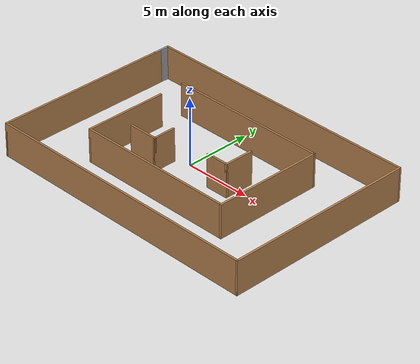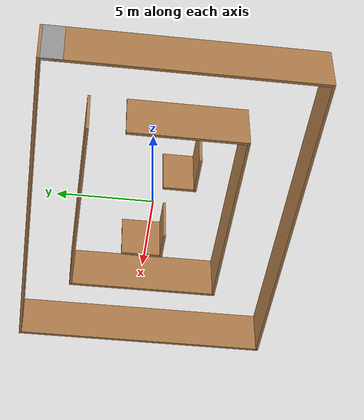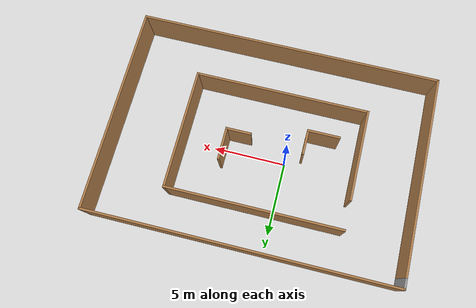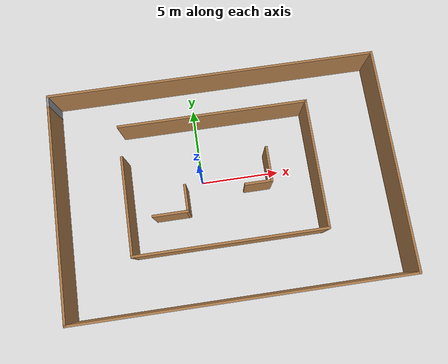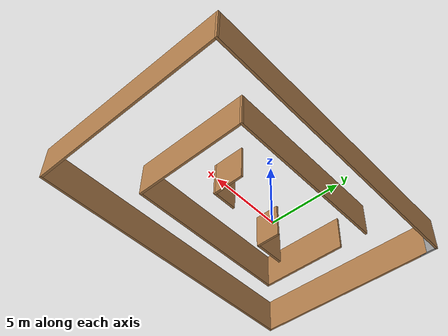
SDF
<?xml version='1.0'?>
<sdf version='1.7'>
  <model name='my_test_env'>
    <pose>1.50358 -0.606764 0 0 -0 0</pose>
    <link name='Wall_10'>
      <collision name='Wall_10_Collision'>
        <geometry>
          <box>
            <size>13.5 0.15 2.5</size>
          </box>
        </geometry>
        <pose>0 0 1.25 0 -0 0</pose>
      </collision>
      <visual name='Wall_10_Visual'>
        <pose>0 0 1.25 0 -0 0</pose>
        <geometry>
          <box>
            <size>13.5 0.15 2.5</size>
          </box>
        </geometry>
        <material>
          <script>
            <uri>file://media/materials/scripts/gazebo.material</uri>
            <name>Gazebo/Wood</name>
          </script>
          <ambient>1 1 1 1</ambient>
        </material>
        <meta>
          <layer>0</layer>
        </meta>
      </visual>
      <pose>-10.425 -0.375 0 0 -0 -1.5708</pose>
    </link>
    <link name='Wall_11'>
      <collision name='Wall_11_Collision'>
        <geometry>
          <box>
            <size>21 0.15 2.5</size>
          </box>
        </geometry>
        <pose>0 0 1.25 0 -0 0</pose>
      </collision>
      <visual name='Wall_11_Visual'>
        <pose>0 0 1.25 0 -0 0</pose>
        <geometry>
          <box>
            <size>21 0.15 2.5</size>
          </box>
        </geometry>
        <material>
          <script>
            <uri>file://media/materials/scripts/gazebo.material</uri>
            <name>Gazebo/Wood</name>
          </script>
          <ambient>1 1 1 1</ambient>
        </material>
        <meta>
          <layer>0</layer>
        </meta>
      </visual>
      <pose>0 -7.05 0 0 -0 0</pose>
    </link>
    <link name='Wall_12'>
      <collision name='Wall_12_Collision'>
        <geometry>
          <box>
            <size>14.25 0.15 2.5</size>
          </box>
        </geometry>
        <pose>0 0 1.25 0 -0 0</pose>
      </collision>
      <visual name='Wall_12_Visual'>
        <pose>0 0 1.25 0 -0 0</pose>
        <geometry>
          <box>
            <size>14.25 0.15 2.5</size>
          </box>
        </geometry>
        <material>
          <script>
            <uri>file://media/materials/scripts/gazebo.material</uri>
            <name>Gazebo/Wood</name>
          </script>
          <ambient>1 1 1 1</ambient>
        </material>
        <meta>
          <layer>0</layer>
        </meta>
      </visual>
      <pose>10.425 0 0 0 -0 1.5708</pose>
    </link>
    <link name='Wall_13'>
      <collision name='Wall_13_Collision'>
        <geometry>
          <box>
            <size>21 0.15 2.5</size>
          </box>
        </geometry>
        <pose>0 0 1.25 0 -0 0</pose>
      </collision>
      <visual name='Wall_13_Visual'>
        <pose>0 0 1.25 0 -0 0</pose>
        <geometry>
          <box>
            <size>21 0.15 2.5</size>
          </box>
        </geometry>
        <material>
          <script>
            <uri>file://media/materials/scripts/gazebo.material</uri>
            <name>Gazebo/Wood</name>
          </script>
          <ambient>1 1 1 1</ambient>
        </material>
        <meta>
          <layer>0</layer>
        </meta>
      </visual>
      <pose>0 7.05 0 0 -0 3.14159</pose>
    </link>
    <link name='Wall_14'>
      <collision name='Wall_14_Collision'>
        <geometry>
          <box>
            <size>1.25 0.15 2.5</size>
          </box>
        </geometry>
        <pose>0 0 1.25 0 -0 0</pose>
      </collision>
      <visual name='Wall_14_Visual'>
        <pose>0 0 1.25 0 -0 0</pose>
        <geometry>
          <box>
            <size>1.25 0.15 2.5</size>
          </box>
        </geometry>
        <material>
          <script>
            <uri>file://media/materials/scripts/gazebo.material</uri>
            <name>Gazebo/Grey</name>
          </script>
          <ambient>1 1 1 1</ambient>
        </material>
        <meta>
          <layer>0</layer>
        </meta>
      </visual>
      <pose>-10.425 6.5 0 0 -0 -1.5708</pose>
    </link>
    <link name='Wall_17'>
      <collision name='Wall_17_Collision'>
        <geometry>
          <box>
            <size>2.25 0.15 2.5</size>
          </box>
        </geometry>
        <pose>0 0 1.25 0 -0 0</pose>
      </collision>
      <visual name='Wall_17_Visual'>
        <pose>0 0 1.25 0 -0 0</pose>
        <geometry>
          <box>
            <size>2.25 0.15 2.5</size>
          </box>
        </geometry>
        <material>
          <script>
            <uri>file://media/materials/scripts/gazebo.material</uri>
            <name>Gazebo/Wood</name>
          </script>
          <ambient>1 1 1 1</ambient>
        </material>
        <meta>
          <layer>0</layer>
        </meta>
      </visual>
      <pose>2.72306 0.718975 0 0 -0 -1.5708</pose>
    </link>
    <link name='Wall_18'>
      <collision name='Wall_18_Collision'>
        <geometry>
          <box>
            <size>1.75 0.15 2.5</size>
          </box>
        </geometry>
        <pose>0 0 1.25 0 -0 0</pose>
      </collision>
      <visual name='Wall_18_Visual'>
        <pose>0 0 1.25 0 -0 0</pose>
        <geometry>
          <box>
            <size>1.75 0.15 2.5</size>
          </box>
        </geometry>
        <material>
          <script>
            <uri>file://media/materials/scripts/gazebo.material</uri>
            <name>Gazebo/Wood</name>
          </script>
          <ambient>1 1 1 1</ambient>
        </material>
        <meta>
          <layer>0</layer>
        </meta>
      </visual>
      <pose>1.92306 -0.331025 0 0 -0 3.14159</pose>
    </link>
    <link name='Wall_20'>
      <collision name='Wall_20_Collision'>
        <geometry>
          <box>
            <size>2.25 0.15 2.5</size>
          </box>
        </geometry>
        <pose>0 0 1.25 0 -0 0</pose>
      </collision>
      <visual name='Wall_20_Visual'>
        <pose>0 0 1.25 0 -0 0</pose>
        <geometry>
          <box>
            <size>2.25 0.15 2.5</size>
          </box>
        </geometry>
        <material>
          <script>
            <uri>file://media/materials/scripts/gazebo.material</uri>
            <name>Gazebo/Wood</name>
          </script>
          <ambient>1 1 1 1</ambient>
        </material>
        <meta>
          <layer>0</layer>
        </meta>
      </visual>
      <pose>-3.63031 -1.46747 0 0 -0 0</pose>
    </link>
    <link name='Wall_21'>
      <collision name='Wall_21_Collision'>
        <geometry>
          <box>
            <size>1.75 0.15 2.5</size>
          </box>
        </geometry>
        <pose>0 0 1.25 0 -0 0</pose>
      </collision>
      <visual name='Wall_21_Visual'>
        <pose>0 0 1.25 0 -0 0</pose>
        <geometry>
          <box>
            <size>1.75 0.15 2.5</size>
          </box>
        </geometry>
        <material>
          <script>
            <uri>file://media/materials/scripts/gazebo.material</uri>
            <name>Gazebo/Wood</name>
          </script>
          <ambient>1 1 1 1</ambient>
        </material>
        <meta>
          <layer>0</layer>
        </meta>
      </visual>
      <pose>-2.58031 -0.667471 0 0 -0 1.5708</pose>
    </link>
    <link name='Wall_4'>
      <collision name='Wall_4_Collision'>
        <geometry>
          <box>
            <size>6.25 0.15 2.5</size>
          </box>
        </geometry>
        <pose>0 0 1.25 0 -0 0</pose>
      </collision>
      <visual name='Wall_4_Visual'>
        <pose>0 0 1.25 0 -0 0</pose>
        <geometry>
          <box>
            <size>6.25 0.15 2.5</size>
          </box>
        </geometry>
        <material>
          <script>
            <uri>file://media/materials/scripts/gazebo.material</uri>
            <name>Gazebo/Wood</name>
          </script>
          <ambient>1 1 1 1</ambient>
        </material>
        <meta>
          <layer>0</layer>
        </meta>
      </visual>
      <pose>-6.19752 -0.631293 0 0 -0 -1.5708</pose>
    </link>
    <link name='Wall_5'>
      <collision name='Wall_5_Collision'>
        <geometry>
          <box>
            <size>12 0.15 2.5</size>
          </box>
        </geometry>
        <pose>0 0 1.25 0 -0 0</pose>
      </collision>
      <visual name='Wall_5_Visual'>
        <pose>0 0 1.25 0 -0 0</pose>
        <geometry>
          <box>
            <size>12 0.15 2.5</size>
          </box>
        </geometry>
        <material>
          <script>
            <uri>file://media/materials/scripts/gazebo.material</uri>
            <name>Gazebo/Wood</name>
          </script>
          <ambient>1 1 1 1</ambient>
        </material>
        <meta>
          <layer>0</layer>
        </meta>
      </visual>
      <pose>-0.272518 -3.68129 0 0 -0 0</pose>
    </link>
    <link name='Wall_6'>
      <collision name='Wall_6_Collision'>
        <geometry>
          <box>
            <size>8.25 0.15 2.5</size>
          </box>
        </geometry>
        <pose>0 0 1.25 0 -0 0</pose>
      </collision>
      <visual name='Wall_6_Visual'>
        <pose>0 0 1.25 0 -0 0</pose>
        <geometry>
          <box>
            <size>8.25 0.15 2.5</size>
          </box>
        </geometry>
        <material>
          <script>
            <uri>file://media/materials/scripts/gazebo.material</uri>
            <name>Gazebo/Wood</name>
          </script>
          <ambient>1 1 1 1</ambient>
        </material>
        <meta>
          <layer>0</layer>
        </meta>
      </visual>
      <pose>5.65248 0.368707 0 0 -0 1.5708</pose>
    </link>
    <link name='Wall_7'>
      <collision name='Wall_7_Collision'>
        <geometry>
          <box>
            <size>12 0.15 2.5</size>
          </box>
        </geometry>
        <pose>0 0 1.25 0 -0 0</pose>
      </collision>
      <visual name='Wall_7_Visual'>
        <pose>0 0 1.25 0 -0 0</pose>
        <geometry>
          <box>
            <size>12 0.15 2.5</size>
          </box>
        </geometry>
        <material>
          <script>
            <uri>file://media/materials/scripts/gazebo.material</uri>
            <name>Gazebo/Wood</name>
          </script>
          <ambient>1 1 1 1</ambient>
        </material>
        <meta>
          <layer>0</layer>
        </meta>
      </visual>
      <pose>-0.272518 4.41871 0 0 -0 3.14159</pose>
    </link>
    <static>1</static>
  </model>
</sdf>
